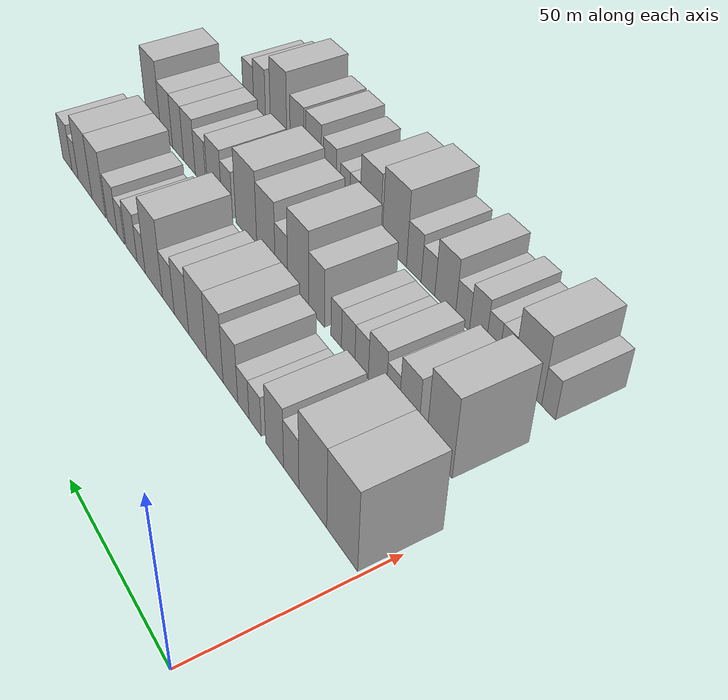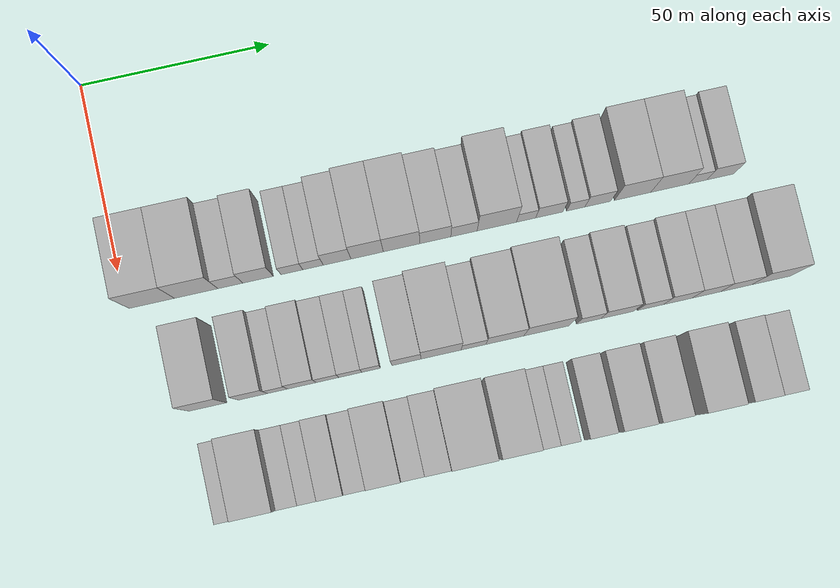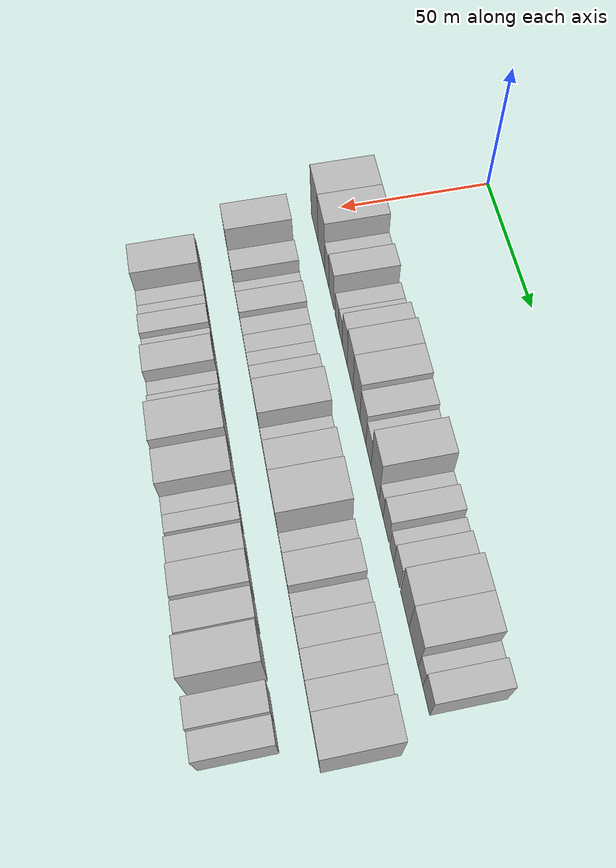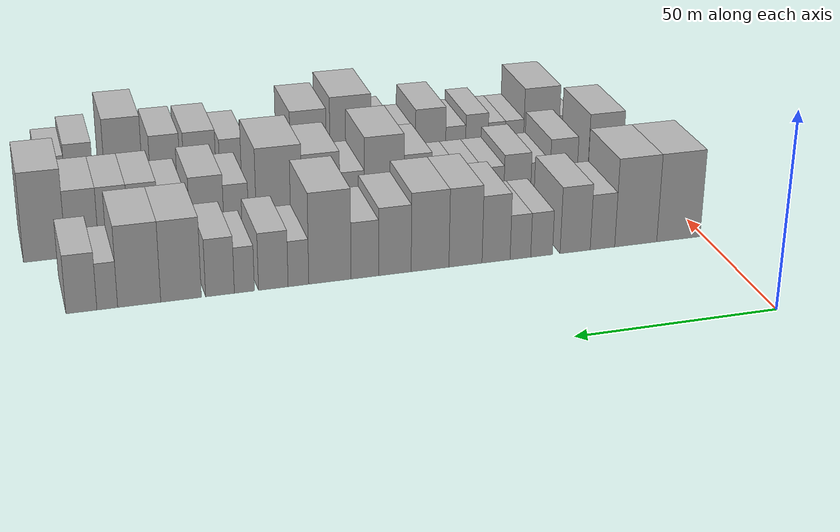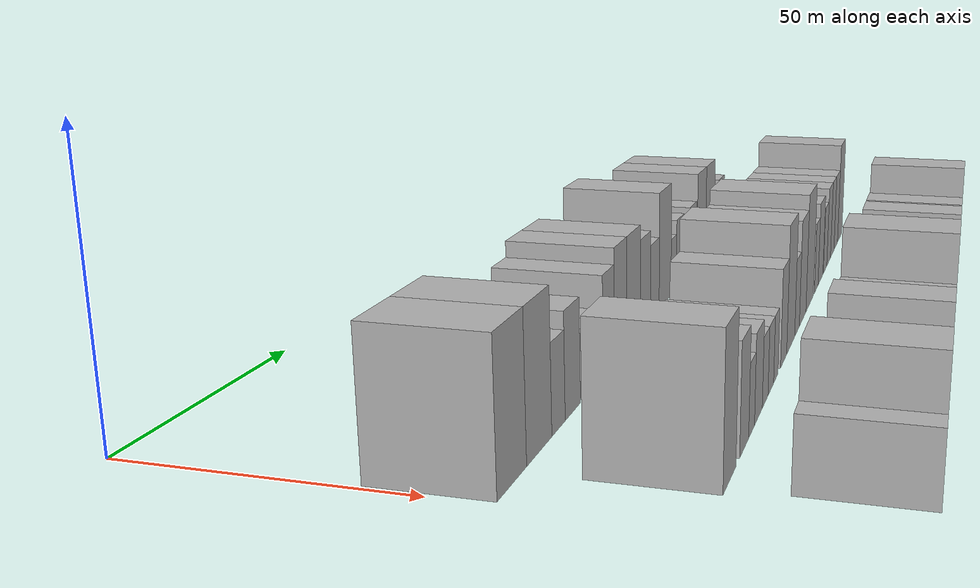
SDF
<sdf version="1.6">
 <world name="default">
  <model name="building_41">
   <static>1</static>
   <pose>50.0000 6.9310 0 0.000000 0.000000 0.000000</pose>
   <link name="link">
    <pose>0 0 12.00 0 0 0</pose>
    <collision name="collision"><geometry><box><size>20.0000 11.8186 24.0000</size></box></geometry></collision>
    <visual name="visual">
     <cast_shadows>0</cast_shadows>
     <geometry><box><size>20.0000 11.8186 24.0000</size></box></geometry>
     <material>
      <script>
       <uri>model://HANNAS_wall/materials/scripts</uri>
       <uri>model://HANNAS_wall/materials/textures</uri>
       <name>vrc/HANNAS_wall</name>
      </script>
     </material>
    </visual>
   </link>
  </model>
  <model name="building_42">
   <static>1</static>
   <pose>50.0000 18.5101 0 0.000000 0.000000 0.000000</pose>
   <link name="link">
    <pose>0 0 12.00 0 0 0</pose>
    <collision name="collision"><geometry><box><size>20.0000 11.3396 24.0000</size></box></geometry></collision>
    <visual name="visual">
     <cast_shadows>0</cast_shadows>
     <geometry><box><size>20.0000 11.3396 24.0000</size></box></geometry>
     <material>
      <script>
       <uri>model://HANNAS_wall/materials/scripts</uri>
       <uri>model://HANNAS_wall/materials/textures</uri>
       <name>vrc/HANNAS_wall</name>
      </script>
     </material>
    </visual>
   </link>
  </model>
  <model name="building_43">
   <static>1</static>
   <pose>50.0000 27.4540 0 0.000000 0.000000 0.000000</pose>
   <link name="link">
    <pose>0 0 7.50 0 0 0</pose>
    <collision name="collision"><geometry><box><size>20.0000 6.5480 15.0000</size></box></geometry></collision>
    <visual name="visual">
     <cast_shadows>0</cast_shadows>
     <geometry><box><size>20.0000 6.5480 15.0000</size></box></geometry>
     <material>
      <script>
       <uri>model://HANNAS_wall/materials/scripts</uri>
       <uri>model://HANNAS_wall/materials/textures</uri>
       <name>vrc/HANNAS_wall</name>
      </script>
     </material>
    </visual>
   </link>
  </model>
  <model name="building_44">
   <static>1</static>
   <pose>50.0000 34.7189 0 0.000000 0.000000 0.000000</pose>
   <link name="link">
    <pose>0 0 9.00 0 0 0</pose>
    <collision name="collision"><geometry><box><size>20.0000 7.9819 18.0000</size></box></geometry></collision>
    <visual name="visual">
     <cast_shadows>0</cast_shadows>
     <geometry><box><size>20.0000 7.9819 18.0000</size></box></geometry>
     <material>
      <script>
       <uri>model://HANNAS_wall/materials/scripts</uri>
       <uri>model://HANNAS_wall/materials/textures</uri>
       <name>vrc/HANNAS_wall</name>
      </script>
     </material>
    </visual>
   </link>
  </model>
  <model name="building_45">
   <static>1</static>
   <pose>50.0000 43.5649 0 0.000000 0.000000 0.000000</pose>
   <link name="link">
    <pose>0 0 6.00 0 0 0</pose>
    <collision name="collision"><geometry><box><size>20.0000 5.7101 12.0000</size></box></geometry></collision>
    <visual name="visual">
     <cast_shadows>0</cast_shadows>
     <geometry><box><size>20.0000 5.7101 12.0000</size></box></geometry>
     <material>
      <script>
       <uri>model://HANNAS_wall/materials/scripts</uri>
       <uri>model://HANNAS_wall/materials/textures</uri>
       <name>vrc/HANNAS_wall</name>
      </script>
     </material>
    </visual>
   </link>
  </model>
  <model name="building_46">
   <static>1</static>
   <pose>50.0000 49.1078 0 0.000000 0.000000 0.000000</pose>
   <link name="link">
    <pose>0 0 6.00 0 0 0</pose>
    <collision name="collision"><geometry><box><size>20.0000 5.3757 12.0000</size></box></geometry></collision>
    <visual name="visual">
     <cast_shadows>0</cast_shadows>
     <geometry><box><size>20.0000 5.3757 12.0000</size></box></geometry>
     <material>
      <script>
       <uri>model://HANNAS_wall/materials/scripts</uri>
       <uri>model://HANNAS_wall/materials/textures</uri>
       <name>vrc/HANNAS_wall</name>
      </script>
     </material>
    </visual>
   </link>
  </model>
  <model name="building_47">
   <static>1</static>
   <pose>50.0000 55.4277 0 0.000000 0.000000 0.000000</pose>
   <link name="link">
    <pose>0 0 9.00 0 0 0</pose>
    <collision name="collision"><geometry><box><size>20.0000 7.2643 18.0000</size></box></geometry></collision>
    <visual name="visual">
     <cast_shadows>0</cast_shadows>
     <geometry><box><size>20.0000 7.2643 18.0000</size></box></geometry>
     <material>
      <script>
       <uri>model://HANNAS_wall/materials/scripts</uri>
       <uri>model://HANNAS_wall/materials/textures</uri>
       <name>vrc/HANNAS_wall</name>
      </script>
     </material>
    </visual>
   </link>
  </model>
  <model name="building_48">
   <static>1</static>
   <pose>50.0000 63.3043 0 0.000000 0.000000 0.000000</pose>
   <link name="link">
    <pose>0 0 10.50 0 0 0</pose>
    <collision name="collision"><geometry><box><size>20.0000 8.4889 21.0000</size></box></geometry></collision>
    <visual name="visual">
     <cast_shadows>0</cast_shadows>
     <geometry><box><size>20.0000 8.4889 21.0000</size></box></geometry>
     <material>
      <script>
       <uri>model://HANNAS_wall/materials/scripts</uri>
       <uri>model://HANNAS_wall/materials/textures</uri>
       <name>vrc/HANNAS_wall</name>
      </script>
     </material>
    </visual>
   </link>
  </model>
  <model name="building_49">
   <static>1</static>
   <pose>50.0000 72.3543 0 0.000000 0.000000 0.000000</pose>
   <link name="link">
    <pose>0 0 10.50 0 0 0</pose>
    <collision name="collision"><geometry><box><size>20.0000 9.6111 21.0000</size></box></geometry></collision>
    <visual name="visual">
     <cast_shadows>0</cast_shadows>
     <geometry><box><size>20.0000 9.6111 21.0000</size></box></geometry>
     <material>
      <script>
       <uri>model://HANNAS_wall/materials/scripts</uri>
       <uri>model://HANNAS_wall/materials/textures</uri>
       <name>vrc/HANNAS_wall</name>
      </script>
     </material>
    </visual>
   </link>
  </model>
  <model name="building_50">
   <static>1</static>
   <pose>50.0000 81.2418 0 0.000000 0.000000 0.000000</pose>
   <link name="link">
    <pose>0 0 9.00 0 0 0</pose>
    <collision name="collision"><geometry><box><size>20.0000 8.1640 18.0000</size></box></geometry></collision>
    <visual name="visual">
     <cast_shadows>0</cast_shadows>
     <geometry><box><size>20.0000 8.1640 18.0000</size></box></geometry>
     <material>
      <script>
       <uri>model://HANNAS_wall/materials/scripts</uri>
       <uri>model://HANNAS_wall/materials/textures</uri>
       <name>vrc/HANNAS_wall</name>
      </script>
     </material>
    </visual>
   </link>
  </model>
  <model name="building_51">
   <static>1</static>
   <pose>50.0000 88.7758 0 0.000000 0.000000 0.000000</pose>
   <link name="link">
    <pose>0 0 7.50 0 0 0</pose>
    <collision name="collision"><geometry><box><size>20.0000 6.9040 15.0000</size></box></geometry></collision>
    <visual name="visual">
     <cast_shadows>0</cast_shadows>
     <geometry><box><size>20.0000 6.9040 15.0000</size></box></geometry>
     <material>
      <script>
       <uri>model://HANNAS_wall/materials/scripts</uri>
       <uri>model://HANNAS_wall/materials/textures</uri>
       <name>vrc/HANNAS_wall</name>
      </script>
     </material>
    </visual>
   </link>
  </model>
  <model name="building_52">
   <static>1</static>
   <pose>50.0000 97.4379 0 0.000000 0.000000 0.000000</pose>
   <link name="link">
    <pose>0 0 12.00 0 0 0</pose>
    <collision name="collision"><geometry><box><size>20.0000 10.4201 24.0000</size></box></geometry></collision>
    <visual name="visual">
     <cast_shadows>0</cast_shadows>
     <geometry><box><size>20.0000 10.4201 24.0000</size></box></geometry>
     <material>
      <script>
       <uri>model://HANNAS_wall/materials/scripts</uri>
       <uri>model://HANNAS_wall/materials/textures</uri>
       <name>vrc/HANNAS_wall</name>
      </script>
     </material>
    </visual>
   </link>
  </model>
  <model name="building_53">
   <static>1</static>
   <pose>50.0000 105.1796 0 0.000000 0.000000 0.000000</pose>
   <link name="link">
    <pose>0 0 6.00 0 0 0</pose>
    <collision name="collision"><geometry><box><size>20.0000 5.0632 12.0000</size></box></geometry></collision>
    <visual name="visual">
     <cast_shadows>0</cast_shadows>
     <geometry><box><size>20.0000 5.0632 12.0000</size></box></geometry>
     <material>
      <script>
       <uri>model://HANNAS_wall/materials/scripts</uri>
       <uri>model://HANNAS_wall/materials/textures</uri>
       <name>vrc/HANNAS_wall</name>
      </script>
     </material>
    </visual>
   </link>
  </model>
  <model name="building_54">
   <static>1</static>
   <pose>50.0000 111.3044 0 0.000000 0.000000 0.000000</pose>
   <link name="link">
    <pose>0 0 7.50 0 0 0</pose>
    <collision name="collision"><geometry><box><size>20.0000 7.1864 15.0000</size></box></geometry></collision>
    <visual name="visual">
     <cast_shadows>0</cast_shadows>
     <geometry><box><size>20.0000 7.1864 15.0000</size></box></geometry>
     <material>
      <script>
       <uri>model://HANNAS_wall/materials/scripts</uri>
       <uri>model://HANNAS_wall/materials/textures</uri>
       <name>vrc/HANNAS_wall</name>
      </script>
     </material>
    </visual>
   </link>
  </model>
  <model name="building_55">
   <static>1</static>
   <pose>50.0000 118.3106 0 0.000000 0.000000 0.000000</pose>
   <link name="link">
    <pose>0 0 6.00 0 0 0</pose>
    <collision name="collision"><geometry><box><size>20.0000 4.8260 12.0000</size></box></geometry></collision>
    <visual name="visual">
     <cast_shadows>0</cast_shadows>
     <geometry><box><size>20.0000 4.8260 12.0000</size></box></geometry>
     <material>
      <script>
       <uri>model://HANNAS_wall/materials/scripts</uri>
       <uri>model://HANNAS_wall/materials/textures</uri>
       <name>vrc/HANNAS_wall</name>
      </script>
     </material>
    </visual>
   </link>
  </model>
  <model name="building_56">
   <static>1</static>
   <pose>50.0000 124.1659 0 0.000000 0.000000 0.000000</pose>
   <link name="link">
    <pose>0 0 7.50 0 0 0</pose>
    <collision name="collision"><geometry><box><size>20.0000 6.8845 15.0000</size></box></geometry></collision>
    <visual name="visual">
     <cast_shadows>0</cast_shadows>
     <geometry><box><size>20.0000 6.8845 15.0000</size></box></geometry>
     <material>
      <script>
       <uri>model://HANNAS_wall/materials/scripts</uri>
       <uri>model://HANNAS_wall/materials/textures</uri>
       <name>vrc/HANNAS_wall</name>
      </script>
     </material>
    </visual>
   </link>
  </model>
  <model name="building_57">
   <static>1</static>
   <pose>50.0000 133.4270 0 0.000000 0.000000 0.000000</pose>
   <link name="link">
    <pose>0 0 10.50 0 0 0</pose>
    <collision name="collision"><geometry><box><size>20.0000 9.6377 21.0000</size></box></geometry></collision>
    <visual name="visual">
     <cast_shadows>0</cast_shadows>
     <geometry><box><size>20.0000 9.6377 21.0000</size></box></geometry>
     <material>
      <script>
       <uri>model://HANNAS_wall/materials/scripts</uri>
       <uri>model://HANNAS_wall/materials/textures</uri>
       <name>vrc/HANNAS_wall</name>
      </script>
     </material>
    </visual>
   </link>
  </model>
  <model name="building_58">
   <static>1</static>
   <pose>50.0000 143.2968 0 0.000000 0.000000 0.000000</pose>
   <link name="link">
    <pose>0 0 10.50 0 0 0</pose>
    <collision name="collision"><geometry><box><size>20.0000 10.1019 21.0000</size></box></geometry></collision>
    <visual name="visual">
     <cast_shadows>0</cast_shadows>
     <geometry><box><size>20.0000 10.1019 21.0000</size></box></geometry>
     <material>
      <script>
       <uri>model://HANNAS_wall/materials/scripts</uri>
       <uri>model://HANNAS_wall/materials/textures</uri>
       <name>vrc/HANNAS_wall</name>
      </script>
     </material>
    </visual>
   </link>
  </model>
  <model name="building_59">
   <static>1</static>
   <pose>50.0000 150.7551 0 0.000000 0.000000 0.000000</pose>
   <link name="link">
    <pose>0 0 6.00 0 0 0</pose>
    <collision name="collision"><geometry><box><size>20.0000 4.8148 12.0000</size></box></geometry></collision>
    <visual name="visual">
     <cast_shadows>0</cast_shadows>
     <geometry><box><size>20.0000 4.8148 12.0000</size></box></geometry>
     <material>
      <script>
       <uri>model://HANNAS_wall/materials/scripts</uri>
       <uri>model://HANNAS_wall/materials/textures</uri>
       <name>vrc/HANNAS_wall</name>
      </script>
     </material>
    </visual>
   </link>
  </model>
  <model name="building_60">
   <static>1</static>
   <pose>50.0000 156.7391 0 0.000000 0.000000 0.000000</pose>
   <link name="link">
    <pose>0 0 7.50 0 0 0</pose>
    <collision name="collision"><geometry><box><size>20.0000 7.1532 15.0000</size></box></geometry></collision>
    <visual name="visual">
     <cast_shadows>0</cast_shadows>
     <geometry><box><size>20.0000 7.1532 15.0000</size></box></geometry>
     <material>
      <script>
       <uri>model://HANNAS_wall/materials/scripts</uri>
       <uri>model://HANNAS_wall/materials/textures</uri>
       <name>vrc/HANNAS_wall</name>
      </script>
     </material>
    </visual>
   </link>
  </model>
  <model name="building_123">
   <static>1</static>
   <pose>79.0000 15.6437 0 0.000000 0.000000 0.000000</pose>
   <link name="link">
    <pose>0 0 12.00 0 0 0</pose>
    <collision name="collision"><geometry><box><size>20.0000 9.7383 24.0000</size></box></geometry></collision>
    <visual name="visual">
     <cast_shadows>0</cast_shadows>
     <geometry><box><size>20.0000 9.7383 24.0000</size></box></geometry>
     <material>
      <script>
       <uri>model://HANNAS_wall/materials/scripts</uri>
       <uri>model://HANNAS_wall/materials/textures</uri>
       <name>vrc/HANNAS_wall</name>
      </script>
     </material>
    </visual>
   </link>
  </model>
  <model name="building_124">
   <static>1</static>
   <pose>79.0000 27.3005 0 0.000000 0.000000 0.000000</pose>
   <link name="link">
    <pose>0 0 9.00 0 0 0</pose>
    <collision name="collision"><geometry><box><size>20.0000 7.5753 18.0000</size></box></geometry></collision>
    <visual name="visual">
     <cast_shadows>0</cast_shadows>
     <geometry><box><size>20.0000 7.5753 18.0000</size></box></geometry>
     <material>
      <script>
       <uri>model://HANNAS_wall/materials/scripts</uri>
       <uri>model://HANNAS_wall/materials/textures</uri>
       <name>vrc/HANNAS_wall</name>
      </script>
     </material>
    </visual>
   </link>
  </model>
  <model name="building_125">
   <static>1</static>
   <pose>79.0000 33.7070 0 0.000000 0.000000 0.000000</pose>
   <link name="link">
    <pose>0 0 6.00 0 0 0</pose>
    <collision name="collision"><geometry><box><size>20.0000 5.2376 12.0000</size></box></geometry></collision>
    <visual name="visual">
     <cast_shadows>0</cast_shadows>
     <geometry><box><size>20.0000 5.2376 12.0000</size></box></geometry>
     <material>
      <script>
       <uri>model://HANNAS_wall/materials/scripts</uri>
       <uri>model://HANNAS_wall/materials/textures</uri>
       <name>vrc/HANNAS_wall</name>
      </script>
     </material>
    </visual>
   </link>
  </model>
  <model name="building_126">
   <static>1</static>
   <pose>79.0000 40.0483 0 0.000000 0.000000 0.000000</pose>
   <link name="link">
    <pose>0 0 7.50 0 0 0</pose>
    <collision name="collision"><geometry><box><size>20.0000 7.4451 15.0000</size></box></geometry></collision>
    <visual name="visual">
     <cast_shadows>0</cast_shadows>
     <geometry><box><size>20.0000 7.4451 15.0000</size></box></geometry>
     <material>
      <script>
       <uri>model://HANNAS_wall/materials/scripts</uri>
       <uri>model://HANNAS_wall/materials/textures</uri>
       <name>vrc/HANNAS_wall</name>
      </script>
     </material>
    </visual>
   </link>
  </model>
  <model name="building_127">
   <static>1</static>
   <pose>79.0000 46.6944 0 0.000000 0.000000 0.000000</pose>
   <link name="link">
    <pose>0 0 6.00 0 0 0</pose>
    <collision name="collision"><geometry><box><size>20.0000 5.8472 12.0000</size></box></geometry></collision>
    <visual name="visual">
     <cast_shadows>0</cast_shadows>
     <geometry><box><size>20.0000 5.8472 12.0000</size></box></geometry>
     <material>
      <script>
       <uri>model://HANNAS_wall/materials/scripts</uri>
       <uri>model://HANNAS_wall/materials/textures</uri>
       <name>vrc/HANNAS_wall</name>
      </script>
     </material>
    </visual>
   </link>
  </model>
  <model name="building_128">
   <static>1</static>
   <pose>79.0000 52.6075 0 0.000000 0.000000 0.000000</pose>
   <link name="link">
    <pose>0 0 6.00 0 0 0</pose>
    <collision name="collision"><geometry><box><size>20.0000 5.9790 12.0000</size></box></geometry></collision>
    <visual name="visual">
     <cast_shadows>0</cast_shadows>
     <geometry><box><size>20.0000 5.9790 12.0000</size></box></geometry>
     <material>
      <script>
       <uri>model://HANNAS_wall/materials/scripts</uri>
       <uri>model://HANNAS_wall/materials/textures</uri>
       <name>vrc/HANNAS_wall</name>
      </script>
     </material>
    </visual>
   </link>
  </model>
  <model name="building_129">
   <static>1</static>
   <pose>79.0000 58.0185 0 0.000000 0.000000 0.000000</pose>
   <link name="link">
    <pose>0 0 6.00 0 0 0</pose>
    <collision name="collision"><geometry><box><size>20.0000 4.8431 12.0000</size></box></geometry></collision>
    <visual name="visual">
     <cast_shadows>0</cast_shadows>
     <geometry><box><size>20.0000 4.8431 12.0000</size></box></geometry>
     <material>
      <script>
       <uri>model://HANNAS_wall/materials/scripts</uri>
       <uri>model://HANNAS_wall/materials/textures</uri>
       <name>vrc/HANNAS_wall</name>
      </script>
     </material>
    </visual>
   </link>
  </model>
  <model name="building_130">
   <static>1</static>
   <pose>79.0000 67.2030 0 0.000000 0.000000 0.000000</pose>
   <link name="link">
    <pose>0 0 9.00 0 0 0</pose>
    <collision name="collision"><geometry><box><size>20.0000 7.5258 18.0000</size></box></geometry></collision>
    <visual name="visual">
     <cast_shadows>0</cast_shadows>
     <geometry><box><size>20.0000 7.5258 18.0000</size></box></geometry>
     <material>
      <script>
       <uri>model://HANNAS_wall/materials/scripts</uri>
       <uri>model://HANNAS_wall/materials/textures</uri>
       <name>vrc/HANNAS_wall</name>
      </script>
     </material>
    </visual>
   </link>
  </model>
  <model name="building_131">
   <static>1</static>
   <pose>79.0000 76.2050 0 0.000000 0.000000 0.000000</pose>
   <link name="link">
    <pose>0 0 12.00 0 0 0</pose>
    <collision name="collision"><geometry><box><size>20.0000 10.4782 24.0000</size></box></geometry></collision>
    <visual name="visual">
     <cast_shadows>0</cast_shadows>
     <geometry><box><size>20.0000 10.4782 24.0000</size></box></geometry>
     <material>
      <script>
       <uri>model://HANNAS_wall/materials/scripts</uri>
       <uri>model://HANNAS_wall/materials/textures</uri>
       <name>vrc/HANNAS_wall</name>
      </script>
     </material>
    </visual>
   </link>
  </model>
  <model name="building_132">
   <static>1</static>
   <pose>79.0000 84.6854 0 0.000000 0.000000 0.000000</pose>
   <link name="link">
    <pose>0 0 7.50 0 0 0</pose>
    <collision name="collision"><geometry><box><size>20.0000 6.4825 15.0000</size></box></geometry></collision>
    <visual name="visual">
     <cast_shadows>0</cast_shadows>
     <geometry><box><size>20.0000 6.4825 15.0000</size></box></geometry>
     <material>
      <script>
       <uri>model://HANNAS_wall/materials/scripts</uri>
       <uri>model://HANNAS_wall/materials/textures</uri>
       <name>vrc/HANNAS_wall</name>
      </script>
     </material>
    </visual>
   </link>
  </model>
  <model name="building_133">
   <static>1</static>
   <pose>79.0000 92.8751 0 0.000000 0.000000 0.000000</pose>
   <link name="link">
    <pose>0 0 10.50 0 0 0</pose>
    <collision name="collision"><geometry><box><size>20.0000 9.8969 21.0000</size></box></geometry></collision>
    <visual name="visual">
     <cast_shadows>0</cast_shadows>
     <geometry><box><size>20.0000 9.8969 21.0000</size></box></geometry>
     <material>
      <script>
       <uri>model://HANNAS_wall/materials/scripts</uri>
       <uri>model://HANNAS_wall/materials/textures</uri>
       <name>vrc/HANNAS_wall</name>
      </script>
     </material>
    </visual>
   </link>
  </model>
  <model name="building_134">
   <static>1</static>
   <pose>79.0000 103.7422 0 0.000000 0.000000 0.000000</pose>
   <link name="link">
    <pose>0 0 12.00 0 0 0</pose>
    <collision name="collision"><geometry><box><size>20.0000 11.8374 24.0000</size></box></geometry></collision>
    <visual name="visual">
     <cast_shadows>0</cast_shadows>
     <geometry><box><size>20.0000 11.8374 24.0000</size></box></geometry>
     <material>
      <script>
       <uri>model://HANNAS_wall/materials/scripts</uri>
       <uri>model://HANNAS_wall/materials/textures</uri>
       <name>vrc/HANNAS_wall</name>
      </script>
     </material>
    </visual>
   </link>
  </model>
  <model name="building_135">
   <static>1</static>
   <pose>79.0000 114.8143 0 0.000000 0.000000 0.000000</pose>
   <link name="link">
    <pose>0 0 7.50 0 0 0</pose>
    <collision name="collision"><geometry><box><size>20.0000 6.3068 15.0000</size></box></geometry></collision>
    <visual name="visual">
     <cast_shadows>0</cast_shadows>
     <geometry><box><size>20.0000 6.3068 15.0000</size></box></geometry>
     <material>
      <script>
       <uri>model://HANNAS_wall/materials/scripts</uri>
       <uri>model://HANNAS_wall/materials/textures</uri>
       <name>vrc/HANNAS_wall</name>
      </script>
     </material>
    </visual>
   </link>
  </model>
  <model name="building_136">
   <static>1</static>
   <pose>79.0000 122.2950 0 0.000000 0.000000 0.000000</pose>
   <link name="link">
    <pose>0 0 9.00 0 0 0</pose>
    <collision name="collision"><geometry><box><size>20.0000 8.6547 18.0000</size></box></geometry></collision>
    <visual name="visual">
     <cast_shadows>0</cast_shadows>
     <geometry><box><size>20.0000 8.6547 18.0000</size></box></geometry>
     <material>
      <script>
       <uri>model://HANNAS_wall/materials/scripts</uri>
       <uri>model://HANNAS_wall/materials/textures</uri>
       <name>vrc/HANNAS_wall</name>
      </script>
     </material>
    </visual>
   </link>
  </model>
  <model name="building_137">
   <static>1</static>
   <pose>79.0000 131.0570 0 0.000000 0.000000 0.000000</pose>
   <link name="link">
    <pose>0 0 7.50 0 0 0</pose>
    <collision name="collision"><geometry><box><size>20.0000 6.8693 15.0000</size></box></geometry></collision>
    <visual name="visual">
     <cast_shadows>0</cast_shadows>
     <geometry><box><size>20.0000 6.8693 15.0000</size></box></geometry>
     <material>
      <script>
       <uri>model://HANNAS_wall/materials/scripts</uri>
       <uri>model://HANNAS_wall/materials/textures</uri>
       <name>vrc/HANNAS_wall</name>
      </script>
     </material>
    </visual>
   </link>
  </model>
  <model name="building_138">
   <static>1</static>
   <pose>79.0000 138.2600 0 0.000000 0.000000 0.000000</pose>
   <link name="link">
    <pose>0 0 9.00 0 0 0</pose>
    <collision name="collision"><geometry><box><size>20.0000 7.5365 18.0000</size></box></geometry></collision>
    <visual name="visual">
     <cast_shadows>0</cast_shadows>
     <geometry><box><size>20.0000 7.5365 18.0000</size></box></geometry>
     <material>
      <script>
       <uri>model://HANNAS_wall/materials/scripts</uri>
       <uri>model://HANNAS_wall/materials/textures</uri>
       <name>vrc/HANNAS_wall</name>
      </script>
     </material>
    </visual>
   </link>
  </model>
  <model name="building_139">
   <static>1</static>
   <pose>79.0000 145.7567 0 0.000000 0.000000 0.000000</pose>
   <link name="link">
    <pose>0 0 9.00 0 0 0</pose>
    <collision name="collision"><geometry><box><size>20.0000 7.4570 18.0000</size></box></geometry></collision>
    <visual name="visual">
     <cast_shadows>0</cast_shadows>
     <geometry><box><size>20.0000 7.4570 18.0000</size></box></geometry>
     <material>
      <script>
       <uri>model://HANNAS_wall/materials/scripts</uri>
       <uri>model://HANNAS_wall/materials/textures</uri>
       <name>vrc/HANNAS_wall</name>
      </script>
     </material>
    </visual>
   </link>
  </model>
  <model name="building_140">
   <static>1</static>
   <pose>79.0000 153.5549 0 0.000000 0.000000 0.000000</pose>
   <link name="link">
    <pose>0 0 9.00 0 0 0</pose>
    <collision name="collision"><geometry><box><size>20.0000 8.1393 18.0000</size></box></geometry></collision>
    <visual name="visual">
     <cast_shadows>0</cast_shadows>
     <geometry><box><size>20.0000 8.1393 18.0000</size></box></geometry>
     <material>
      <script>
       <uri>model://HANNAS_wall/materials/scripts</uri>
       <uri>model://HANNAS_wall/materials/textures</uri>
       <name>vrc/HANNAS_wall</name>
      </script>
     </material>
    </visual>
   </link>
  </model>
  <model name="building_141">
   <static>1</static>
   <pose>79.0000 162.8138 0 0.000000 0.000000 0.000000</pose>
   <link name="link">
    <pose>0 0 12.00 0 0 0</pose>
    <collision name="collision"><geometry><box><size>20.0000 10.3785 24.0000</size></box></geometry></collision>
    <visual name="visual">
     <cast_shadows>0</cast_shadows>
     <geometry><box><size>20.0000 10.3785 24.0000</size></box></geometry>
     <material>
      <script>
       <uri>model://HANNAS_wall/materials/scripts</uri>
       <uri>model://HANNAS_wall/materials/textures</uri>
       <name>vrc/HANNAS_wall</name>
      </script>
     </material>
    </visual>
   </link>
  </model>
  <model name="building_192">
   <static>1</static>
   <pose>108.0000 15.3897 0 0.000000 0.000000 0.000000</pose>
   <link name="link">
    <pose>0 0 6.00 0 0 0</pose>
    <collision name="collision"><geometry><box><size>20.0000 4.8914 12.0000</size></box></geometry></collision>
    <visual name="visual">
     <cast_shadows>0</cast_shadows>
     <geometry><box><size>20.0000 4.8914 12.0000</size></box></geometry>
     <material>
      <script>
       <uri>model://HANNAS_wall/materials/scripts</uri>
       <uri>model://HANNAS_wall/materials/textures</uri>
       <name>vrc/HANNAS_wall</name>
      </script>
     </material>
    </visual>
   </link>
  </model>
  <model name="building_193">
   <static>1</static>
   <pose>108.0000 23.0498 0 0.000000 0.000000 0.000000</pose>
   <link name="link">
    <pose>0 0 10.50 0 0 0</pose>
    <collision name="collision"><geometry><box><size>20.0000 10.4286 21.0000</size></box></geometry></collision>
    <visual name="visual">
     <cast_shadows>0</cast_shadows>
     <geometry><box><size>20.0000 10.4286 21.0000</size></box></geometry>
     <material>
      <script>
       <uri>model://HANNAS_wall/materials/scripts</uri>
       <uri>model://HANNAS_wall/materials/textures</uri>
       <name>vrc/HANNAS_wall</name>
      </script>
     </material>
    </visual>
   </link>
  </model>
  <model name="building_194">
   <static>1</static>
   <pose>108.0000 30.9316 0 0.000000 0.000000 0.000000</pose>
   <link name="link">
    <pose>0 0 6.00 0 0 0</pose>
    <collision name="collision"><geometry><box><size>20.0000 5.3351 12.0000</size></box></geometry></collision>
    <visual name="visual">
     <cast_shadows>0</cast_shadows>
     <geometry><box><size>20.0000 5.3351 12.0000</size></box></geometry>
     <material>
      <script>
       <uri>model://HANNAS_wall/materials/scripts</uri>
       <uri>model://HANNAS_wall/materials/textures</uri>
       <name>vrc/HANNAS_wall</name>
      </script>
     </material>
    </visual>
   </link>
  </model>
  <model name="building_195">
   <static>1</static>
   <pose>108.0000 36.1145 0 0.000000 0.000000 0.000000</pose>
   <link name="link">
    <pose>0 0 6.00 0 0 0</pose>
    <collision name="collision"><geometry><box><size>20.0000 5.0308 12.0000</size></box></geometry></collision>
    <visual name="visual">
     <cast_shadows>0</cast_shadows>
     <geometry><box><size>20.0000 5.0308 12.0000</size></box></geometry>
     <material>
      <script>
       <uri>model://HANNAS_wall/materials/scripts</uri>
       <uri>model://HANNAS_wall/materials/textures</uri>
       <name>vrc/HANNAS_wall</name>
      </script>
     </material>
    </visual>
   </link>
  </model>
  <model name="building_196">
   <static>1</static>
   <pose>108.0000 41.9024 0 0.000000 0.000000 0.000000</pose>
   <link name="link">
    <pose>0 0 7.50 0 0 0</pose>
    <collision name="collision"><geometry><box><size>20.0000 6.5449 15.0000</size></box></geometry></collision>
    <visual name="visual">
     <cast_shadows>0</cast_shadows>
     <geometry><box><size>20.0000 6.5449 15.0000</size></box></geometry>
     <material>
      <script>
       <uri>model://HANNAS_wall/materials/scripts</uri>
       <uri>model://HANNAS_wall/materials/textures</uri>
       <name>vrc/HANNAS_wall</name>
      </script>
     </material>
    </visual>
   </link>
  </model>
  <model name="building_197">
   <static>1</static>
   <pose>108.0000 48.0511 0 0.000000 0.000000 0.000000</pose>
   <link name="link">
    <pose>0 0 6.00 0 0 0</pose>
    <collision name="collision"><geometry><box><size>20.0000 5.7524 12.0000</size></box></geometry></collision>
    <visual name="visual">
     <cast_shadows>0</cast_shadows>
     <geometry><box><size>20.0000 5.7524 12.0000</size></box></geometry>
     <material>
      <script>
       <uri>model://HANNAS_wall/materials/scripts</uri>
       <uri>model://HANNAS_wall/materials/textures</uri>
       <name>vrc/HANNAS_wall</name>
      </script>
     </material>
    </visual>
   </link>
  </model>
  <model name="building_198">
   <static>1</static>
   <pose>108.0000 55.2552 0 0.000000 0.000000 0.000000</pose>
   <link name="link">
    <pose>0 0 9.00 0 0 0</pose>
    <collision name="collision"><geometry><box><size>20.0000 8.6558 18.0000</size></box></geometry></collision>
    <visual name="visual">
     <cast_shadows>0</cast_shadows>
     <geometry><box><size>20.0000 8.6558 18.0000</size></box></geometry>
     <material>
      <script>
       <uri>model://HANNAS_wall/materials/scripts</uri>
       <uri>model://HANNAS_wall/materials/textures</uri>
       <name>vrc/HANNAS_wall</name>
      </script>
     </material>
    </visual>
   </link>
  </model>
  <model name="building_199">
   <static>1</static>
   <pose>108.0000 62.5546 0 0.000000 0.000000 0.000000</pose>
   <link name="link">
    <pose>0 0 6.00 0 0 0</pose>
    <collision name="collision"><geometry><box><size>20.0000 5.9430 12.0000</size></box></geometry></collision>
    <visual name="visual">
     <cast_shadows>0</cast_shadows>
     <geometry><box><size>20.0000 5.9430 12.0000</size></box></geometry>
     <material>
      <script>
       <uri>model://HANNAS_wall/materials/scripts</uri>
       <uri>model://HANNAS_wall/materials/textures</uri>
       <name>vrc/HANNAS_wall</name>
      </script>
     </material>
    </visual>
   </link>
  </model>
  <model name="building_200">
   <static>1</static>
   <pose>108.0000 68.8656 0 0.000000 0.000000 0.000000</pose>
   <link name="link">
    <pose>0 0 7.50 0 0 0</pose>
    <collision name="collision"><geometry><box><size>20.0000 6.6791 15.0000</size></box></geometry></collision>
    <visual name="visual">
     <cast_shadows>0</cast_shadows>
     <geometry><box><size>20.0000 6.6791 15.0000</size></box></geometry>
     <material>
      <script>
       <uri>model://HANNAS_wall/materials/scripts</uri>
       <uri>model://HANNAS_wall/materials/textures</uri>
       <name>vrc/HANNAS_wall</name>
      </script>
     </material>
    </visual>
   </link>
  </model>
  <model name="building_201">
   <static>1</static>
   <pose>108.0000 77.9353 0 0.000000 0.000000 0.000000</pose>
   <link name="link">
    <pose>0 0 12.00 0 0 0</pose>
    <collision name="collision"><geometry><box><size>20.0000 11.4604 24.0000</size></box></geometry></collision>
    <visual name="visual">
     <cast_shadows>0</cast_shadows>
     <geometry><box><size>20.0000 11.4604 24.0000</size></box></geometry>
     <material>
      <script>
       <uri>model://HANNAS_wall/materials/scripts</uri>
       <uri>model://HANNAS_wall/materials/textures</uri>
       <name>vrc/HANNAS_wall</name>
      </script>
     </material>
    </visual>
   </link>
  </model>
  <model name="building_202">
   <static>1</static>
   <pose>108.0000 89.6572 0 0.000000 0.000000 0.000000</pose>
   <link name="link">
    <pose>0 0 10.50 0 0 0</pose>
    <collision name="collision"><geometry><box><size>20.0000 9.9833 21.0000</size></box></geometry></collision>
    <visual name="visual">
     <cast_shadows>0</cast_shadows>
     <geometry><box><size>20.0000 9.9833 21.0000</size></box></geometry>
     <material>
      <script>
       <uri>model://HANNAS_wall/materials/scripts</uri>
       <uri>model://HANNAS_wall/materials/textures</uri>
       <name>vrc/HANNAS_wall</name>
      </script>
     </material>
    </visual>
   </link>
  </model>
  <model name="building_203">
   <static>1</static>
   <pose>108.0000 97.2173 0 0.000000 0.000000 0.000000</pose>
   <link name="link">
    <pose>0 0 6.00 0 0 0</pose>
    <collision name="collision"><geometry><box><size>20.0000 5.1370 12.0000</size></box></geometry></collision>
    <visual name="visual">
     <cast_shadows>0</cast_shadows>
     <geometry><box><size>20.0000 5.1370 12.0000</size></box></geometry>
     <material>
      <script>
       <uri>model://HANNAS_wall/materials/scripts</uri>
       <uri>model://HANNAS_wall/materials/textures</uri>
       <name>vrc/HANNAS_wall</name>
      </script>
     </material>
    </visual>
   </link>
  </model>
  <model name="building_204">
   <static>1</static>
   <pose>108.0000 102.3062 0 0.000000 0.000000 0.000000</pose>
   <link name="link">
    <pose>0 0 6.00 0 0 0</pose>
    <collision name="collision"><geometry><box><size>20.0000 5.0410 12.0000</size></box></geometry></collision>
    <visual name="visual">
     <cast_shadows>0</cast_shadows>
     <geometry><box><size>20.0000 5.0410 12.0000</size></box></geometry>
     <material>
      <script>
       <uri>model://HANNAS_wall/materials/scripts</uri>
       <uri>model://HANNAS_wall/materials/textures</uri>
       <name>vrc/HANNAS_wall</name>
      </script>
     </material>
    </visual>
   </link>
  </model>
  <model name="building_205">
   <static>1</static>
   <pose>108.0000 110.3753 0 0.000000 0.000000 0.000000</pose>
   <link name="link">
    <pose>0 0 7.50 0 0 0</pose>
    <collision name="collision"><geometry><box><size>20.0000 7.0971 15.0000</size></box></geometry></collision>
    <visual name="visual">
     <cast_shadows>0</cast_shadows>
     <geometry><box><size>20.0000 7.0971 15.0000</size></box></geometry>
     <material>
      <script>
       <uri>model://HANNAS_wall/materials/scripts</uri>
       <uri>model://HANNAS_wall/materials/textures</uri>
       <name>vrc/HANNAS_wall</name>
      </script>
     </material>
    </visual>
   </link>
  </model>
  <model name="building_206">
   <static>1</static>
   <pose>108.0000 119.2179 0 0.000000 0.000000 0.000000</pose>
   <link name="link">
    <pose>0 0 9.00 0 0 0</pose>
    <collision name="collision"><geometry><box><size>20.0000 8.5883 18.0000</size></box></geometry></collision>
    <visual name="visual">
     <cast_shadows>0</cast_shadows>
     <geometry><box><size>20.0000 8.5883 18.0000</size></box></geometry>
     <material>
      <script>
       <uri>model://HANNAS_wall/materials/scripts</uri>
       <uri>model://HANNAS_wall/materials/textures</uri>
       <name>vrc/HANNAS_wall</name>
      </script>
     </material>
    </visual>
   </link>
  </model>
  <model name="building_207">
   <static>1</static>
   <pose>108.0000 128.5020 0 0.000000 0.000000 0.000000</pose>
   <link name="link">
    <pose>0 0 9.00 0 0 0</pose>
    <collision name="collision"><geometry><box><size>20.0000 7.9798 18.0000</size></box></geometry></collision>
    <visual name="visual">
     <cast_shadows>0</cast_shadows>
     <geometry><box><size>20.0000 7.9798 18.0000</size></box></geometry>
     <material>
      <script>
       <uri>model://HANNAS_wall/materials/scripts</uri>
       <uri>model://HANNAS_wall/materials/textures</uri>
       <name>vrc/HANNAS_wall</name>
      </script>
     </material>
    </visual>
   </link>
  </model>
  <model name="building_208">
   <static>1</static>
   <pose>108.0000 139.4371 0 0.000000 0.000000 0.000000</pose>
   <link name="link">
    <pose>0 0 12.00 0 0 0</pose>
    <collision name="collision"><geometry><box><size>20.0000 9.8904 24.0000</size></box></geometry></collision>
    <visual name="visual">
     <cast_shadows>0</cast_shadows>
     <geometry><box><size>20.0000 9.8904 24.0000</size></box></geometry>
     <material>
      <script>
       <uri>model://HANNAS_wall/materials/scripts</uri>
       <uri>model://HANNAS_wall/materials/textures</uri>
       <name>vrc/HANNAS_wall</name>
      </script>
     </material>
    </visual>
   </link>
  </model>
  <model name="building_209">
   <static>1</static>
   <pose>108.0000 151.0757 0 0.000000 0.000000 0.000000</pose>
   <link name="link">
    <pose>0 0 9.00 0 0 0</pose>
    <collision name="collision"><geometry><box><size>20.0000 7.3868 18.0000</size></box></geometry></collision>
    <visual name="visual">
     <cast_shadows>0</cast_shadows>
     <geometry><box><size>20.0000 7.3868 18.0000</size></box></geometry>
     <material>
      <script>
       <uri>model://HANNAS_wall/materials/scripts</uri>
       <uri>model://HANNAS_wall/materials/textures</uri>
       <name>vrc/HANNAS_wall</name>
      </script>
     </material>
    </visual>
   </link>
  </model>
  <model name="building_210">
   <static>1</static>
   <pose>108.0000 158.2398 0 0.000000 0.000000 0.000000</pose>
   <link name="link">
    <pose>0 0 7.50 0 0 0</pose>
    <collision name="collision"><geometry><box><size>20.0000 6.9416 15.0000</size></box></geometry></collision>
    <visual name="visual">
     <cast_shadows>0</cast_shadows>
     <geometry><box><size>20.0000 6.9416 15.0000</size></box></geometry>
     <material>
      <script>
       <uri>model://HANNAS_wall/materials/scripts</uri>
       <uri>model://HANNAS_wall/materials/textures</uri>
       <name>vrc/HANNAS_wall</name>
      </script>
     </material>
    </visual>
   </link>
  </model>
 </world>
</sdf>
